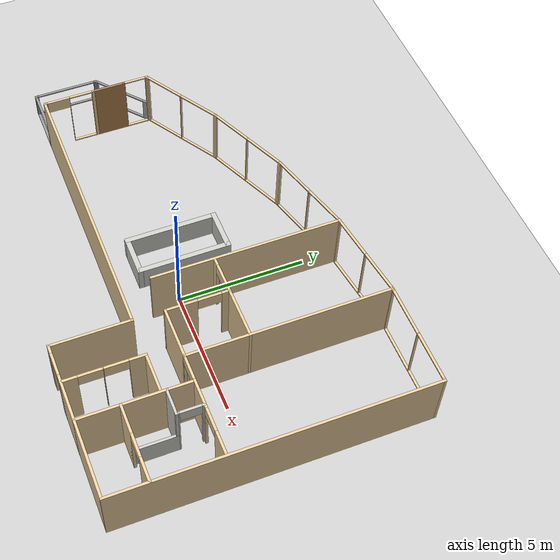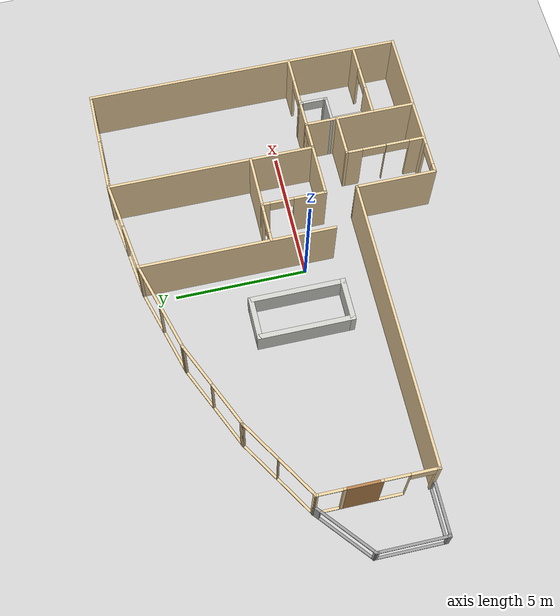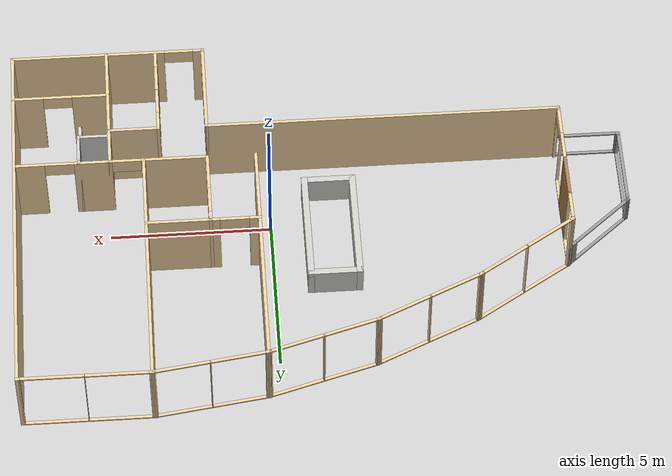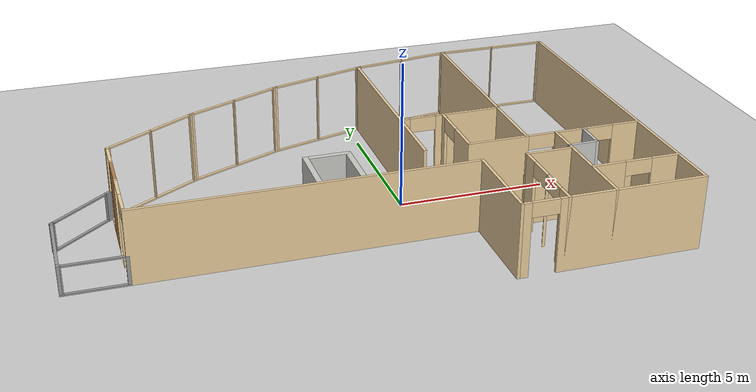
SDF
<sdf version="1.6">
 <world name="default">
  <model name="ground_plane">
   <static>1</static>
   <link name="link">
    <collision name="collision">
     <geometry><plane><normal>0 0 1</normal><size>100 100</size></plane></geometry>
     <surface>
      <contact><collide_bitmask>65535</collide_bitmask></contact>
      <friction><ode><mu>100</mu><mu2>50</mu2></ode></friction>
     </surface>
    </collision>
    <visual name="visual">
     <cast_shadows>0</cast_shadows>
     <geometry><plane><normal>0 0 1</normal><size>100 100</size></plane></geometry>
     <material>
      <script><uri>file://media/materials/scripts/gazebo.material</uri><name>Gazebo/Grey</name></script>
     </material>
    </visual>
   </link>
  </model>
  <model name="enso_mono">
   <pose>-1.65343 0.666389 0 0 -0 0</pose>
   <link name="Wall_0">
    <pose>7.50522 5.99675 0 0 -0 3.14159</pose>
    <visual name="Wall_0_Visual_0">
     <pose>-1.98 0 1.25 0 -0 0</pose>
     <geometry><box><size>0.14 0.1 2.5</size></box></geometry>
     <material>
      <script><uri>file://media/materials/scripts/gazebo.material</uri><name>Gazebo/Grey</name></script>
      <ambient>0.921569 0.807843 0.615686 1</ambient>
     </material>
     <meta><layer>0</layer></meta>
    </visual>
    <collision name="Wall_0_Collision_0">
     <geometry><box><size>0.14 0.1 2.5</size></box></geometry>
     <pose>-1.98 0 1.25 0 -0 0</pose>
    </collision>
    <visual name="Wall_0_Visual_1">
     <pose>0.07 0 0.025 0 -0 0</pose>
     <geometry><box><size>3.96 0.1 0.05</size></box></geometry>
     <material>
      <script><uri>file://media/materials/scripts/gazebo.material</uri><name>Gazebo/Grey</name></script>
      <ambient>0.921569 0.807843 0.615686 1</ambient>
     </material>
     <meta><layer>0</layer></meta>
    </visual>
    <collision name="Wall_0_Collision_1">
     <geometry><box><size>3.96 0.1 0.05</size></box></geometry>
     <pose>0.07 0 0.025 0 -0 0</pose>
    </collision>
    <visual name="Wall_0_Visual_2">
     <pose>0 0 1.275 0 -0 0</pose>
     <geometry><box><size>0.02 0.1 2.45</size></box></geometry>
     <material>
      <script><uri>file://media/materials/scripts/gazebo.material</uri><name>Gazebo/Grey</name></script>
      <ambient>0.921569 0.807843 0.615686 1</ambient>
     </material>
     <meta><layer>0</layer></meta>
    </visual>
    <collision name="Wall_0_Collision_2">
     <geometry><box><size>0.02 0.1 2.45</size></box></geometry>
     <pose>0 0 1.275 0 -0 0</pose>
    </collision>
    <visual name="Wall_0_Visual_3">
     <pose>1.98 0 1.275 0 -0 0</pose>
     <geometry><box><size>0.14 0.1 2.45</size></box></geometry>
     <material>
      <script><uri>file://media/materials/scripts/gazebo.material</uri><name>Gazebo/Grey</name></script>
      <ambient>0.921569 0.807843 0.615686 1</ambient>
     </material>
     <meta><layer>0</layer></meta>
    </visual>
    <collision name="Wall_0_Collision_3">
     <geometry><box><size>0.14 0.1 2.45</size></box></geometry>
     <pose>1.98 0 1.275 0 -0 0</pose>
    </collision>
    <visual name="Wall_0_Visual_4">
     <pose>-0.96 0 2.475 0 -0 0</pose>
     <geometry><box><size>1.9 0.1 0.05</size></box></geometry>
     <material>
      <script><uri>file://media/materials/scripts/gazebo.material</uri><name>Gazebo/Grey</name></script>
      <ambient>0.921569 0.807843 0.615686 1</ambient>
     </material>
     <meta><layer>0</layer></meta>
    </visual>
    <collision name="Wall_0_Collision_4">
     <geometry><box><size>1.9 0.1 0.05</size></box></geometry>
     <pose>-0.96 0 2.475 0 -0 0</pose>
    </collision>
    <visual name="Wall_0_Visual_5">
     <pose>0.96 0 2.475 0 -0 0</pose>
     <geometry><box><size>1.9 0.1 0.05</size></box></geometry>
     <material>
      <script><uri>file://media/materials/scripts/gazebo.material</uri><name>Gazebo/Grey</name></script>
      <ambient>0.921569 0.807843 0.615686 1</ambient>
     </material>
     <meta><layer>0</layer></meta>
    </visual>
    <collision name="Wall_0_Collision_5">
     <geometry><box><size>1.9 0.1 0.05</size></box></geometry>
     <pose>0.96 0 2.475 0 -0 0</pose>
    </collision>
   </link>
   <link name="Wall_1">
    <pose>3.77022 5.75175 0 0 0 -3.00131</pose>
    <visual name="Wall_1_Visual_0">
     <pose>-1.73504 0 1.25 0 -0 0</pose>
     <geometry><box><size>0.134336 0.1 2.5</size></box></geometry>
     <material>
      <script><uri>file://media/materials/scripts/gazebo.material</uri><name>Gazebo/Grey</name></script>
      <ambient>0.921569 0.807843 0.615686 1</ambient>
     </material>
     <meta><layer>0</layer></meta>
    </visual>
    <collision name="Wall_1_Collision_0">
     <geometry><box><size>0.134336 0.1 2.5</size></box></geometry>
     <pose>-1.73504 0 1.25 0 -0 0</pose>
    </collision>
    <visual name="Wall_1_Visual_1">
     <pose>0.067168 0 0.025 0 -0 0</pose>
     <geometry><box><size>3.47009 0.1 0.05</size></box></geometry>
     <material>
      <script><uri>file://media/materials/scripts/gazebo.material</uri><name>Gazebo/Grey</name></script>
      <ambient>0.921569 0.807843 0.615686 1</ambient>
     </material>
     <meta><layer>0</layer></meta>
    </visual>
    <collision name="Wall_1_Collision_1">
     <geometry><box><size>3.47009 0.1 0.05</size></box></geometry>
     <pose>0.067168 0 0.025 0 -0 0</pose>
    </collision>
    <visual name="Wall_1_Visual_2">
     <pose>-0.004951 0 1.275 0 -0 0</pose>
     <geometry><box><size>0.025852 0.1 2.45</size></box></geometry>
     <material>
      <script><uri>file://media/materials/scripts/gazebo.material</uri><name>Gazebo/Grey</name></script>
      <ambient>0.921569 0.807843 0.615686 1</ambient>
     </material>
     <meta><layer>0</layer></meta>
    </visual>
    <collision name="Wall_1_Collision_2">
     <geometry><box><size>0.025852 0.1 2.45</size></box></geometry>
     <pose>-0.004951 0 1.275 0 -0 0</pose>
    </collision>
    <visual name="Wall_1_Visual_3">
     <pose>1.73009 0 1.275 0 -0 0</pose>
     <geometry><box><size>0.144238 0.1 2.45</size></box></geometry>
     <material>
      <script><uri>file://media/materials/scripts/gazebo.material</uri><name>Gazebo/Grey</name></script>
      <ambient>0.921569 0.807843 0.615686 1</ambient>
     </material>
     <meta><layer>0</layer></meta>
    </visual>
    <collision name="Wall_1_Collision_3">
     <geometry><box><size>0.144238 0.1 2.45</size></box></geometry>
     <pose>1.73009 0 1.275 0 -0 0</pose>
    </collision>
    <visual name="Wall_1_Visual_4">
     <pose>-0.842877 0 2.475 0 -0 0</pose>
     <geometry><box><size>1.65 0.1 0.05</size></box></geometry>
     <material>
      <script><uri>file://media/materials/scripts/gazebo.material</uri><name>Gazebo/Grey</name></script>
      <ambient>0.921569 0.807843 0.615686 1</ambient>
     </material>
     <meta><layer>0</layer></meta>
    </visual>
    <collision name="Wall_1_Collision_4">
     <geometry><box><size>1.65 0.1 0.05</size></box></geometry>
     <pose>-0.842877 0 2.475 0 -0 0</pose>
    </collision>
    <visual name="Wall_1_Visual_5">
     <pose>0.832975 0 2.475 0 -0 0</pose>
     <geometry><box><size>1.65 0.1 0.05</size></box></geometry>
     <material>
      <script><uri>file://media/materials/scripts/gazebo.material</uri><name>Gazebo/Grey</name></script>
      <ambient>0.921569 0.807843 0.615686 1</ambient>
     </material>
     <meta><layer>0</layer></meta>
    </visual>
    <collision name="Wall_1_Collision_5">
     <geometry><box><size>1.65 0.1 0.05</size></box></geometry>
     <pose>0.832975 0 2.475 0 -0 0</pose>
    </collision>
   </link>
   <link name="Wall_10">
    <pose>6.50522 -6.00325 0 0 -0 0</pose>
    <visual name="Wall_10_Visual_0">
     <pose>-2.87 0 1.25 0 -0 0</pose>
     <geometry><box><size>0.36 0.1 2.5</size></box></geometry>
     <material>
      <script><uri>file://media/materials/scripts/gazebo.material</uri><name>Gazebo/Grey</name></script>
      <ambient>0.921569 0.807843 0.615686 1</ambient>
     </material>
     <meta><layer>0</layer></meta>
    </visual>
    <collision name="Wall_10_Collision_0">
     <geometry><box><size>0.36 0.1 2.5</size></box></geometry>
     <pose>-2.87 0 1.25 0 -0 0</pose>
    </collision>
    <visual name="Wall_10_Visual_1">
     <pose>0.63 0 1.25 0 -0 0</pose>
     <geometry><box><size>4.84 0.1 2.5</size></box></geometry>
     <material>
      <script><uri>file://media/materials/scripts/gazebo.material</uri><name>Gazebo/Grey</name></script>
      <ambient>0.921569 0.807843 0.615686 1</ambient>
     </material>
     <meta><layer>0</layer></meta>
    </visual>
    <collision name="Wall_10_Collision_1">
     <geometry><box><size>4.84 0.1 2.5</size></box></geometry>
     <pose>0.63 0 1.25 0 -0 0</pose>
    </collision>
    <visual name="Wall_10_Visual_2">
     <pose>-2.24 0 2.25 0 -0 0</pose>
     <geometry><box><size>0.9 0.1 0.5</size></box></geometry>
     <material>
      <script><uri>file://media/materials/scripts/gazebo.material</uri><name>Gazebo/Grey</name></script>
      <ambient>0.921569 0.807843 0.615686 1</ambient>
     </material>
     <meta><layer>0</layer></meta>
    </visual>
    <collision name="Wall_10_Collision_2">
     <geometry><box><size>0.9 0.1 0.5</size></box></geometry>
     <pose>-2.24 0 2.25 0 -0 0</pose>
    </collision>
   </link>
   <link name="Wall_11">
    <collision name="Wall_11_Collision">
     <geometry><box><size>12.1 0.1 2.5</size></box></geometry>
     <pose>0 0 1.25 0 -0 0</pose>
    </collision>
    <visual name="Wall_11_Visual">
     <pose>0 0 1.25 0 -0 0</pose>
     <geometry><box><size>12.1 0.1 2.5</size></box></geometry>
     <material>
      <script><uri>file://media/materials/scripts/gazebo.material</uri><name>Gazebo/Grey</name></script>
      <ambient>0.921569 0.807843 0.615686 1</ambient>
     </material>
     <meta><layer>0</layer></meta>
    </visual>
    <pose>9.50522 -0.00325 0 0 -0 1.5708</pose>
   </link>
   <link name="Wall_13">
    <pose>-7.49478 0.76675 0 0 0 -1.5708</pose>
    <visual name="Wall_13_Visual_0">
     <pose>-0.485 0 1.25 0 -0 0</pose>
     <geometry><box><size>0.13 0.1 2.5</size></box></geometry>
     <material>
      <script><uri>file://media/materials/scripts/gazebo.material</uri><name>Gazebo/Grey</name></script>
      <ambient>0.921569 0.807843 0.615686 1</ambient>
     </material>
     <meta><layer>0</layer></meta>
    </visual>
    <collision name="Wall_13_Collision_0">
     <geometry><box><size>0.13 0.1 2.5</size></box></geometry>
     <pose>-0.485 0 1.25 0 -0 0</pose>
    </collision>
    <visual name="Wall_13_Visual_1">
     <pose>0.065 0 0.025 0 -0 0</pose>
     <geometry><box><size>0.97 0.1 0.05</size></box></geometry>
     <material>
      <script><uri>file://media/materials/scripts/gazebo.material</uri><name>Gazebo/Grey</name></script>
      <ambient>0.921569 0.807843 0.615686 1</ambient>
     </material>
     <meta><layer>0</layer></meta>
    </visual>
    <collision name="Wall_13_Collision_1">
     <geometry><box><size>0.97 0.1 0.05</size></box></geometry>
     <pose>0.065 0 0.025 0 -0 0</pose>
    </collision>
    <visual name="Wall_13_Visual_2">
     <pose>0.495 0 1.275 0 -0 0</pose>
     <geometry><box><size>0.11 0.1 2.45</size></box></geometry>
     <material>
      <script><uri>file://media/materials/scripts/gazebo.material</uri><name>Gazebo/Grey</name></script>
      <ambient>0.921569 0.807843 0.615686 1</ambient>
     </material>
     <meta><layer>0</layer></meta>
    </visual>
    <collision name="Wall_13_Collision_2">
     <geometry><box><size>0.11 0.1 2.45</size></box></geometry>
     <pose>0.495 0 1.275 0 -0 0</pose>
    </collision>
    <visual name="Wall_13_Visual_3">
     <pose>0.01 0 2.475 0 -0 0</pose>
     <geometry><box><size>0.86 0.1 0.05</size></box></geometry>
     <material>
      <script><uri>file://media/materials/scripts/gazebo.material</uri><name>Gazebo/Grey</name></script>
      <ambient>0.921569 0.807843 0.615686 1</ambient>
     </material>
     <meta><layer>0</layer></meta>
    </visual>
    <collision name="Wall_13_Collision_3">
     <geometry><box><size>0.86 0.1 0.05</size></box></geometry>
     <pose>0.01 0 2.475 0 -0 0</pose>
    </collision>
   </link>
   <link name="Wall_15">
    <collision name="Wall_15_Collision">
     <geometry><box><size>1.37 0.1 2.5</size></box></geometry>
     <pose>0 0 1.25 0 -0 0</pose>
    </collision>
    <visual name="Wall_15_Visual">
     <pose>0 0 1.25 0 -0 0</pose>
     <geometry><box><size>1.37 0.1 2.5</size></box></geometry>
     <material>
      <script><uri>file://media/materials/scripts/gazebo.material</uri><name>Gazebo/Wood</name></script>
      <ambient>1 1 1 1</ambient>
     </material>
     <meta><layer>0</layer></meta>
    </visual>
    <pose>-7.49478 -0.368249 0 0 0 -1.5708</pose>
   </link>
   <link name="Wall_17">
    <pose>-7.49478 -2.00325 0 0 0 -1.5708</pose>
    <visual name="Wall_17_Visual_0">
     <pose>-0.99 0 1.25 0 -0 0</pose>
     <geometry><box><size>0.12 0.1 2.5</size></box></geometry>
     <material>
      <script><uri>file://media/materials/scripts/gazebo.material</uri><name>Gazebo/Grey</name></script>
      <ambient>0.921569 0.807843 0.615686 1</ambient>
     </material>
     <meta><layer>0</layer></meta>
    </visual>
    <collision name="Wall_17_Collision_0">
     <geometry><box><size>0.12 0.1 2.5</size></box></geometry>
     <pose>-0.99 0 1.25 0 -0 0</pose>
    </collision>
    <visual name="Wall_17_Visual_1">
     <pose>0.975 0 1.25 0 -0 0</pose>
     <geometry><box><size>0.149999 0.1 2.5</size></box></geometry>
     <material>
      <script><uri>file://media/materials/scripts/gazebo.material</uri><name>Gazebo/Grey</name></script>
      <ambient>0.921569 0.807843 0.615686 1</ambient>
     </material>
     <meta><layer>0</layer></meta>
    </visual>
    <collision name="Wall_17_Collision_1">
     <geometry><box><size>0.149999 0.1 2.5</size></box></geometry>
     <pose>0.975 0 1.25 0 -0 0</pose>
    </collision>
    <visual name="Wall_17_Visual_2">
     <pose>-0.465 0 0.025 0 -0 0</pose>
     <geometry><box><size>0.930001 0.1 0.05</size></box></geometry>
     <material>
      <script><uri>file://media/materials/scripts/gazebo.material</uri><name>Gazebo/Grey</name></script>
      <ambient>0.921569 0.807843 0.615686 1</ambient>
     </material>
     <meta><layer>0</layer></meta>
    </visual>
    <collision name="Wall_17_Collision_2">
     <geometry><box><size>0.930001 0.1 0.05</size></box></geometry>
     <pose>-0.465 0 0.025 0 -0 0</pose>
    </collision>
    <visual name="Wall_17_Visual_3">
     <pose>-0.005 0 1.275 0 -0 0</pose>
     <geometry><box><size>0.010001 0.1 2.45</size></box></geometry>
     <material>
      <script><uri>file://media/materials/scripts/gazebo.material</uri><name>Gazebo/Grey</name></script>
      <ambient>0.921569 0.807843 0.615686 1</ambient>
     </material>
     <meta><layer>0</layer></meta>
    </visual>
    <collision name="Wall_17_Collision_3">
     <geometry><box><size>0.010001 0.1 2.45</size></box></geometry>
     <pose>-0.005 0 1.275 0 -0 0</pose>
    </collision>
    <visual name="Wall_17_Visual_4">
     <pose>0.450001 0 2.25 0 -0 0</pose>
     <geometry><box><size>0.9 0.1 0.5</size></box></geometry>
     <material>
      <script><uri>file://media/materials/scripts/gazebo.material</uri><name>Gazebo/Grey</name></script>
      <ambient>0.921569 0.807843 0.615686 1</ambient>
     </material>
     <meta><layer>0</layer></meta>
    </visual>
    <collision name="Wall_17_Collision_4">
     <geometry><box><size>0.9 0.1 0.5</size></box></geometry>
     <pose>0.450001 0 2.25 0 -0 0</pose>
    </collision>
    <visual name="Wall_17_Visual_5">
     <pose>-0.47 0 2.475 0 -0 0</pose>
     <geometry><box><size>0.92 0.1 0.05</size></box></geometry>
     <material>
      <script><uri>file://media/materials/scripts/gazebo.material</uri><name>Gazebo/Grey</name></script>
      <ambient>0.921569 0.807843 0.615686 1</ambient>
     </material>
     <meta><layer>0</layer></meta>
    </visual>
    <collision name="Wall_17_Collision_5">
     <geometry><box><size>0.92 0.1 0.05</size></box></geometry>
     <pose>-0.47 0 2.475 0 -0 0</pose>
    </collision>
   </link>
   <link name="Wall_19">
    <collision name="Wall_19_Collision">
     <geometry><box><size>7.41 0.1 2.5</size></box></geometry>
     <pose>0 0 1.25 0 -0 0</pose>
    </collision>
    <visual name="Wall_19_Visual">
     <pose>0 0 1.25 0 -0 0</pose>
     <geometry><box><size>7.41 0.1 2.5</size></box></geometry>
     <material>
      <script><uri>file://media/materials/scripts/gazebo.material</uri><name>Gazebo/Grey</name></script>
      <ambient>0.921569 0.807843 0.615686 1</ambient>
     </material>
     <meta><layer>0</layer></meta>
    </visual>
    <pose>2.03522 1.85175 0 0 0 -1.5708</pose>
   </link>
   <link name="Wall_2">
    <pose>0.35522 5.02675 0 0 0 -2.86329</pose>
    <visual name="Wall_2_Visual_0">
     <pose>-1.72962 0 1.25 0 -0 0</pose>
     <geometry><box><size>0.135206 0.1 2.5</size></box></geometry>
     <material>
      <script><uri>file://media/materials/scripts/gazebo.material</uri><name>Gazebo/Grey</name></script>
      <ambient>0.921569 0.807843 0.615686 1</ambient>
     </material>
     <meta><layer>0</layer></meta>
    </visual>
    <collision name="Wall_2_Collision_0">
     <geometry><box><size>0.135206 0.1 2.5</size></box></geometry>
     <pose>-1.72962 0 1.25 0 -0 0</pose>
    </collision>
    <visual name="Wall_2_Visual_1">
     <pose>0.067603 0 0.025 0 -0 0</pose>
     <geometry><box><size>3.45925 0.1 0.05</size></box></geometry>
     <material>
      <script><uri>file://media/materials/scripts/gazebo.material</uri><name>Gazebo/Grey</name></script>
      <ambient>0.921569 0.807843 0.615686 1</ambient>
     </material>
     <meta><layer>0</layer></meta>
    </visual>
    <collision name="Wall_2_Collision_1">
     <geometry><box><size>3.45925 0.1 0.05</size></box></geometry>
     <pose>0.067603 0 0.025 0 -0 0</pose>
    </collision>
    <visual name="Wall_2_Visual_2">
     <pose>-0.0025 0 1.275 0 -0 0</pose>
     <geometry><box><size>0.039041 0.1 2.45</size></box></geometry>
     <material>
      <script><uri>file://media/materials/scripts/gazebo.material</uri><name>Gazebo/Grey</name></script>
      <ambient>0.921569 0.807843 0.615686 1</ambient>
     </material>
     <meta><layer>0</layer></meta>
    </visual>
    <collision name="Wall_2_Collision_2">
     <geometry><box><size>0.039041 0.1 2.45</size></box></geometry>
     <pose>-0.0025 0 1.275 0 -0 0</pose>
    </collision>
    <visual name="Wall_2_Visual_3">
     <pose>1.73212 0 1.275 0 -0 0</pose>
     <geometry><box><size>0.130206 0.1 2.45</size></box></geometry>
     <material>
      <script><uri>file://media/materials/scripts/gazebo.material</uri><name>Gazebo/Grey</name></script>
      <ambient>0.921569 0.807843 0.615686 1</ambient>
     </material>
     <meta><layer>0</layer></meta>
    </visual>
    <collision name="Wall_2_Collision_3">
     <geometry><box><size>0.130206 0.1 2.45</size></box></geometry>
     <pose>1.73212 0 1.275 0 -0 0</pose>
    </collision>
    <visual name="Wall_2_Visual_4">
     <pose>-0.84202 0 2.475 0 -0 0</pose>
     <geometry><box><size>1.64 0.1 0.05</size></box></geometry>
     <material>
      <script><uri>file://media/materials/scripts/gazebo.material</uri><name>Gazebo/Grey</name></script>
      <ambient>0.921569 0.807843 0.615686 1</ambient>
     </material>
     <meta><layer>0</layer></meta>
    </visual>
    <collision name="Wall_2_Collision_4">
     <geometry><box><size>1.64 0.1 0.05</size></box></geometry>
     <pose>-0.84202 0 2.475 0 -0 0</pose>
    </collision>
    <visual name="Wall_2_Visual_5">
     <pose>0.84202 0 2.475 0 -0 0</pose>
     <geometry><box><size>1.65 0.1 0.05</size></box></geometry>
     <material>
      <script><uri>file://media/materials/scripts/gazebo.material</uri><name>Gazebo/Grey</name></script>
      <ambient>0.921569 0.807843 0.615686 1</ambient>
     </material>
     <meta><layer>0</layer></meta>
    </visual>
    <collision name="Wall_2_Collision_5">
     <geometry><box><size>1.65 0.1 0.05</size></box></geometry>
     <pose>0.84202 0 2.475 0 -0 0</pose>
    </collision>
   </link>
   <link name="Wall_21">
    <collision name="Wall_21_Collision">
     <geometry><box><size>7.9 0.1 2.5</size></box></geometry>
     <pose>0 0 1.25 0 -0 0</pose>
    </collision>
    <visual name="Wall_21_Visual">
     <pose>0 0 1.25 0 -0 0</pose>
     <geometry><box><size>7.9 0.1 2.5</size></box></geometry>
     <material>
      <script><uri>file://media/materials/scripts/gazebo.material</uri><name>Gazebo/Grey</name></script>
      <ambient>0.921569 0.807843 0.615686 1</ambient>
     </material>
     <meta><layer>0</layer></meta>
    </visual>
    <pose>5.50522 2.09675 0 0 0 -1.5708</pose>
   </link>
   <link name="Wall_23">
    <pose>3.53522 -0.60325 0 0 0 -1.5708</pose>
    <visual name="Wall_23_Visual_0">
     <pose>-1.075 0 1.25 0 -0 0</pose>
     <geometry><box><size>0.35 0.1 2.5</size></box></geometry>
     <material>
      <script><uri>file://media/materials/scripts/gazebo.material</uri><name>Gazebo/Grey</name></script>
      <ambient>0.921569 0.807843 0.615686 1</ambient>
     </material>
     <meta><layer>0</layer></meta>
    </visual>
    <collision name="Wall_23_Collision_0">
     <geometry><box><size>0.35 0.1 2.5</size></box></geometry>
     <pose>-1.075 0 1.25 0 -0 0</pose>
    </collision>
    <visual name="Wall_23_Visual_1">
     <pose>0.625 0 1.25 0 -0 0</pose>
     <geometry><box><size>1.25 0.1 2.5</size></box></geometry>
     <material>
      <script><uri>file://media/materials/scripts/gazebo.material</uri><name>Gazebo/Grey</name></script>
      <ambient>0.921569 0.807843 0.615686 1</ambient>
     </material>
     <meta><layer>0</layer></meta>
    </visual>
    <collision name="Wall_23_Collision_1">
     <geometry><box><size>1.25 0.1 2.5</size></box></geometry>
     <pose>0.625 0 1.25 0 -0 0</pose>
    </collision>
    <visual name="Wall_23_Visual_2">
     <pose>-0.45 0 2.25 0 -0 0</pose>
     <geometry><box><size>0.9 0.1 0.5</size></box></geometry>
     <material>
      <script><uri>file://media/materials/scripts/gazebo.material</uri><name>Gazebo/Grey</name></script>
      <ambient>0.921569 0.807843 0.615686 1</ambient>
     </material>
     <meta><layer>0</layer></meta>
    </visual>
    <collision name="Wall_23_Collision_2">
     <geometry><box><size>0.9 0.1 0.5</size></box></geometry>
     <pose>-0.45 0 2.25 0 -0 0</pose>
    </collision>
   </link>
   <link name="Wall_25">
    <pose>5.00522 -4.50325 0 0 0 -1.5708</pose>
    <visual name="Wall_25_Visual_0">
     <pose>-1.22 0 1.25 0 -0 0</pose>
     <geometry><box><size>0.66 0.1 2.5</size></box></geometry>
     <material>
      <script><uri>file://media/materials/scripts/gazebo.material</uri><name>Gazebo/Grey</name></script>
      <ambient>0.921569 0.807843 0.615686 1</ambient>
     </material>
     <meta><layer>0</layer></meta>
    </visual>
    <collision name="Wall_25_Collision_0">
     <geometry><box><size>0.66 0.1 2.5</size></box></geometry>
     <pose>-1.22 0 1.25 0 -0 0</pose>
    </collision>
    <visual name="Wall_25_Visual_1">
     <pose>0.02 0 1.25 0 -0 0</pose>
     <geometry><box><size>0.02 0.1 2.5</size></box></geometry>
     <material>
      <script><uri>file://media/materials/scripts/gazebo.material</uri><name>Gazebo/Grey</name></script>
      <ambient>0.921569 0.807843 0.615686 1</ambient>
     </material>
     <meta><layer>0</layer></meta>
    </visual>
    <collision name="Wall_25_Collision_1">
     <geometry><box><size>0.02 0.1 2.5</size></box></geometry>
     <pose>0.02 0 1.25 0 -0 0</pose>
    </collision>
    <visual name="Wall_25_Visual_2">
     <pose>1.24 0 1.25 0 -0 0</pose>
     <geometry><box><size>0.62 0.1 2.5</size></box></geometry>
     <material>
      <script><uri>file://media/materials/scripts/gazebo.material</uri><name>Gazebo/Grey</name></script>
      <ambient>0.921569 0.807843 0.615686 1</ambient>
     </material>
     <meta><layer>0</layer></meta>
    </visual>
    <collision name="Wall_25_Collision_2">
     <geometry><box><size>0.62 0.1 2.5</size></box></geometry>
     <pose>1.24 0 1.25 0 -0 0</pose>
    </collision>
    <visual name="Wall_25_Visual_3">
     <pose>-0.44 0 2.25 0 -0 0</pose>
     <geometry><box><size>0.9 0.1 0.5</size></box></geometry>
     <material>
      <script><uri>file://media/materials/scripts/gazebo.material</uri><name>Gazebo/Grey</name></script>
      <ambient>0.921569 0.807843 0.615686 1</ambient>
     </material>
     <meta><layer>0</layer></meta>
    </visual>
    <collision name="Wall_25_Collision_3">
     <geometry><box><size>0.9 0.1 0.5</size></box></geometry>
     <pose>-0.44 0 2.25 0 -0 0</pose>
    </collision>
    <visual name="Wall_25_Visual_4">
     <pose>0.48 0 2.25 0 -0 0</pose>
     <geometry><box><size>0.9 0.1 0.5</size></box></geometry>
     <material>
      <script><uri>file://media/materials/scripts/gazebo.material</uri><name>Gazebo/Grey</name></script>
      <ambient>0.921569 0.807843 0.615686 1</ambient>
     </material>
     <meta><layer>0</layer></meta>
    </visual>
    <collision name="Wall_25_Collision_4">
     <geometry><box><size>0.9 0.1 0.5</size></box></geometry>
     <pose>0.48 0 2.25 0 -0 0</pose>
    </collision>
   </link>
   <link name="Wall_29">
    <collision name="Wall_29_Collision">
     <geometry><box><size>4.3 0.1 2.5</size></box></geometry>
     <pose>0 0 1.25 0 -0 0</pose>
    </collision>
    <visual name="Wall_29_Visual">
     <pose>0 0 1.25 0 -0 0</pose>
     <geometry><box><size>4.3 0.1 2.5</size></box></geometry>
     <material>
      <script><uri>file://media/materials/scripts/gazebo.material</uri><name>Gazebo/Grey</name></script>
      <ambient>0.921569 0.807843 0.615686 1</ambient>
     </material>
     <meta><layer>0</layer></meta>
    </visual>
    <pose>6.54522 -3.90325 0 0 0 -1.5708</pose>
   </link>
   <link name="Wall_3">
    <pose>-2.92478 3.83175 0 0 0 -2.72134</pose>
    <visual name="Wall_3_Visual_0">
     <pose>-1.73562 0 1.25 0 -0 0</pose>
     <geometry><box><size>0.133735 0.1 2.5</size></box></geometry>
     <material>
      <script><uri>file://media/materials/scripts/gazebo.material</uri><name>Gazebo/Grey</name></script>
      <ambient>0.921569 0.807843 0.615686 1</ambient>
     </material>
     <meta><layer>0</layer></meta>
    </visual>
    <collision name="Wall_3_Collision_0">
     <geometry><box><size>0.133735 0.1 2.5</size></box></geometry>
     <pose>-1.73562 0 1.25 0 -0 0</pose>
    </collision>
    <visual name="Wall_3_Visual_1">
     <pose>0.066867 0 0.025 0 -0 0</pose>
     <geometry><box><size>3.47125 0.1 0.05</size></box></geometry>
     <material>
      <script><uri>file://media/materials/scripts/gazebo.material</uri><name>Gazebo/Grey</name></script>
      <ambient>0.921569 0.807843 0.615686 1</ambient>
     </material>
     <meta><layer>0</layer></meta>
    </visual>
    <collision name="Wall_3_Collision_1">
     <geometry><box><size>3.47125 0.1 0.05</size></box></geometry>
     <pose>0.066867 0 0.025 0 -0 0</pose>
    </collision>
    <visual name="Wall_3_Visual_2">
     <pose>0 0 1.275 0 -0 0</pose>
     <geometry><box><size>0.037512 0.1 2.45</size></box></geometry>
     <material>
      <script><uri>file://media/materials/scripts/gazebo.material</uri><name>Gazebo/Grey</name></script>
      <ambient>0.921569 0.807843 0.615686 1</ambient>
     </material>
     <meta><layer>0</layer></meta>
    </visual>
    <collision name="Wall_3_Collision_2">
     <geometry><box><size>0.037512 0.1 2.45</size></box></geometry>
     <pose>0 0 1.275 0 -0 0</pose>
    </collision>
    <visual name="Wall_3_Visual_3">
     <pose>1.73562 0 1.275 0 -0 0</pose>
     <geometry><box><size>0.133735 0.1 2.45</size></box></geometry>
     <material>
      <script><uri>file://media/materials/scripts/gazebo.material</uri><name>Gazebo/Grey</name></script>
      <ambient>0.921569 0.807843 0.615686 1</ambient>
     </material>
     <meta><layer>0</layer></meta>
    </visual>
    <collision name="Wall_3_Collision_3">
     <geometry><box><size>0.133735 0.1 2.45</size></box></geometry>
     <pose>1.73562 0 1.275 0 -0 0</pose>
    </collision>
    <visual name="Wall_3_Visual_4">
     <pose>-0.843756 0 2.475 0 -0 0</pose>
     <geometry><box><size>1.65 0.1 0.05</size></box></geometry>
     <material>
      <script><uri>file://media/materials/scripts/gazebo.material</uri><name>Gazebo/Grey</name></script>
      <ambient>0.921569 0.807843 0.615686 1</ambient>
     </material>
     <meta><layer>0</layer></meta>
    </visual>
    <collision name="Wall_3_Collision_4">
     <geometry><box><size>1.65 0.1 0.05</size></box></geometry>
     <pose>-0.843756 0 2.475 0 -0 0</pose>
    </collision>
    <visual name="Wall_3_Visual_5">
     <pose>0.843756 0 2.475 0 -0 0</pose>
     <geometry><box><size>1.65 0.1 0.05</size></box></geometry>
     <material>
      <script><uri>file://media/materials/scripts/gazebo.material</uri><name>Gazebo/Grey</name></script>
      <ambient>0.921569 0.807843 0.615686 1</ambient>
     </material>
     <meta><layer>0</layer></meta>
    </visual>
    <collision name="Wall_3_Collision_5">
     <geometry><box><size>1.65 0.1 0.05</size></box></geometry>
     <pose>0.843756 0 2.475 0 -0 0</pose>
    </collision>
   </link>
   <link name="Wall_31">
    <pose>6.52022 -1.80325 0 0 -0 0</pose>
    <visual name="Wall_31_Visual_0">
     <pose>-1.99 0 1.25 0 -0 0</pose>
     <geometry><box><size>2.09 0.1 2.5</size></box></geometry>
     <material>
      <script><uri>file://media/materials/scripts/gazebo.material</uri><name>Gazebo/Grey</name></script>
      <ambient>0.921569 0.807843 0.615686 1</ambient>
     </material>
     <meta><layer>0</layer></meta>
    </visual>
    <collision name="Wall_31_Collision_0">
     <geometry><box><size>2.09 0.1 2.5</size></box></geometry>
     <pose>-1.99 0 1.25 0 -0 0</pose>
    </collision>
    <visual name="Wall_31_Visual_1">
     <pose>0.545 0 1.25 0 -0 0</pose>
     <geometry><box><size>1.18 0.1 2.5</size></box></geometry>
     <material>
      <script><uri>file://media/materials/scripts/gazebo.material</uri><name>Gazebo/Grey</name></script>
      <ambient>0.921569 0.807843 0.615686 1</ambient>
     </material>
     <meta><layer>0</layer></meta>
    </visual>
    <collision name="Wall_31_Collision_1">
     <geometry><box><size>1.18 0.1 2.5</size></box></geometry>
     <pose>0.545 0 1.25 0 -0 0</pose>
    </collision>
    <visual name="Wall_31_Visual_2">
     <pose>2.535 0 1.25 0 -0 0</pose>
     <geometry><box><size>1 0.1 2.5</size></box></geometry>
     <material>
      <script><uri>file://media/materials/scripts/gazebo.material</uri><name>Gazebo/Grey</name></script>
      <ambient>0.921569 0.807843 0.615686 1</ambient>
     </material>
     <meta><layer>0</layer></meta>
    </visual>
    <collision name="Wall_31_Collision_2">
     <geometry><box><size>1 0.1 2.5</size></box></geometry>
     <pose>2.535 0 1.25 0 -0 0</pose>
    </collision>
    <visual name="Wall_31_Visual_3">
     <pose>-0.495 0 2.25 0 -0 0</pose>
     <geometry><box><size>0.9 0.1 0.5</size></box></geometry>
     <material>
      <script><uri>file://media/materials/scripts/gazebo.material</uri><name>Gazebo/Grey</name></script>
      <ambient>0.921569 0.807843 0.615686 1</ambient>
     </material>
     <meta><layer>0</layer></meta>
    </visual>
    <collision name="Wall_31_Collision_3">
     <geometry><box><size>0.9 0.1 0.5</size></box></geometry>
     <pose>-0.495 0 2.25 0 -0 0</pose>
    </collision>
    <visual name="Wall_31_Visual_4">
     <pose>1.585 0 2.25 0 -0 0</pose>
     <geometry><box><size>0.9 0.1 0.5</size></box></geometry>
     <material>
      <script><uri>file://media/materials/scripts/gazebo.material</uri><name>Gazebo/Grey</name></script>
      <ambient>0.921569 0.807843 0.615686 1</ambient>
     </material>
     <meta><layer>0</layer></meta>
    </visual>
    <collision name="Wall_31_Collision_4">
     <geometry><box><size>0.9 0.1 0.5</size></box></geometry>
     <pose>1.585 0 2.25 0 -0 0</pose>
    </collision>
   </link>
   <link name="Wall_33">
    <collision name="Wall_33_Collision">
     <geometry><box><size>1.64 0.1 2.5</size></box></geometry>
     <pose>0 0 1.25 0 -0 0</pose>
    </collision>
    <visual name="Wall_33_Visual">
     <pose>0 0 1.25 0 -0 0</pose>
     <geometry><box><size>1.64 0.1 2.5</size></box></geometry>
     <material>
      <script><uri>file://media/materials/scripts/gazebo.material</uri><name>Gazebo/Grey</name></script>
      <ambient>0.921569 0.807843 0.615686 1</ambient>
     </material>
     <meta><layer>0</layer></meta>
    </visual>
    <pose>5.77522 -3.00325 0 0 -0 0</pose>
   </link>
   <link name="Wall_35">
    <collision name="Wall_35_Collision">
     <geometry><box><size>1.7 0.2 1</size></box></geometry>
     <pose>0 0 0.5 0 -0 0</pose>
    </collision>
    <visual name="Wall_35_Visual">
     <pose>0 0 0.5 0 -0 0</pose>
     <geometry><box><size>1.7 0.2 1</size></box></geometry>
     <material>
      <script><uri>file://media/materials/scripts/gazebo.material</uri><name>Gazebo/CeilingTiled</name></script>
      <ambient>1 1 1 1</ambient>
     </material>
     <meta><layer>0</layer></meta>
    </visual>
    <pose>-0.21478 -1.80325 0 0 -0 3.14159</pose>
   </link>
   <link name="Wall_37">
    <pose>8.02522 -4.40325 0 0 -0 0</pose>
    <visual name="Wall_37_Visual_0">
     <pose>-0.945 0 1.25 0 -0 0</pose>
     <geometry><box><size>1.17 0.1 2.5</size></box></geometry>
     <material>
      <script><uri>file://media/materials/scripts/gazebo.material</uri><name>Gazebo/Grey</name></script>
      <ambient>0.921569 0.807843 0.615686 1</ambient>
     </material>
     <meta><layer>0</layer></meta>
    </visual>
    <collision name="Wall_37_Collision_0">
     <geometry><box><size>1.17 0.1 2.5</size></box></geometry>
     <pose>-0.945 0 1.25 0 -0 0</pose>
    </collision>
    <visual name="Wall_37_Visual_1">
     <pose>1.035 0 1.25 0 -0 0</pose>
     <geometry><box><size>0.990001 0.1 2.5</size></box></geometry>
     <material>
      <script><uri>file://media/materials/scripts/gazebo.material</uri><name>Gazebo/Grey</name></script>
      <ambient>0.921569 0.807843 0.615686 1</ambient>
     </material>
     <meta><layer>0</layer></meta>
    </visual>
    <collision name="Wall_37_Collision_1">
     <geometry><box><size>0.990001 0.1 2.5</size></box></geometry>
     <pose>1.035 0 1.25 0 -0 0</pose>
    </collision>
    <visual name="Wall_37_Visual_2">
     <pose>0.089999 0 2.25 0 -0 0</pose>
     <geometry><box><size>0.9 0.1 0.5</size></box></geometry>
     <material>
      <script><uri>file://media/materials/scripts/gazebo.material</uri><name>Gazebo/Grey</name></script>
      <ambient>0.921569 0.807843 0.615686 1</ambient>
     </material>
     <meta><layer>0</layer></meta>
    </visual>
    <collision name="Wall_37_Collision_2">
     <geometry><box><size>0.9 0.1 0.5</size></box></geometry>
     <pose>0.089999 0 2.25 0 -0 0</pose>
    </collision>
   </link>
   <link name="Wall_39">
    <pose>3.77022 0.59675 0 0 -0 0</pose>
    <visual name="Wall_39_Visual_0">
     <pose>-1.6 0 1.25 0 -0 0</pose>
     <geometry><box><size>0.37 0.1 2.5</size></box></geometry>
     <material>
      <script><uri>file://media/materials/scripts/gazebo.material</uri><name>Gazebo/Grey</name></script>
      <ambient>0.921569 0.807843 0.615686 1</ambient>
     </material>
     <meta><layer>0</layer></meta>
    </visual>
    <collision name="Wall_39_Collision_0">
     <geometry><box><size>0.37 0.1 2.5</size></box></geometry>
     <pose>-1.6 0 1.25 0 -0 0</pose>
    </collision>
    <visual name="Wall_39_Visual_1">
     <pose>0.635 0 1.25 0 -0 0</pose>
     <geometry><box><size>2.3 0.1 2.5</size></box></geometry>
     <material>
      <script><uri>file://media/materials/scripts/gazebo.material</uri><name>Gazebo/Grey</name></script>
      <ambient>0.921569 0.807843 0.615686 1</ambient>
     </material>
     <meta><layer>0</layer></meta>
    </visual>
    <collision name="Wall_39_Collision_1">
     <geometry><box><size>2.3 0.1 2.5</size></box></geometry>
     <pose>0.635 0 1.25 0 -0 0</pose>
    </collision>
    <visual name="Wall_39_Visual_2">
     <pose>-0.965 0 2.25 0 -0 0</pose>
     <geometry><box><size>0.9 0.1 0.5</size></box></geometry>
     <material>
      <script><uri>file://media/materials/scripts/gazebo.material</uri><name>Gazebo/Grey</name></script>
      <ambient>0.921569 0.807843 0.615686 1</ambient>
     </material>
     <meta><layer>0</layer></meta>
    </visual>
    <collision name="Wall_39_Collision_2">
     <geometry><box><size>0.9 0.1 0.5</size></box></geometry>
     <pose>-0.965 0 2.25 0 -0 0</pose>
    </collision>
   </link>
   <link name="Wall_4">
    <pose>-6.00978 2.19175 0 0 0 -2.58451</pose>
    <visual name="Wall_4_Visual_0">
     <pose>-1.73335 0 1.25 0 -0 0</pose>
     <geometry><box><size>0.132359 0.1 2.5</size></box></geometry>
     <material>
      <script><uri>file://media/materials/scripts/gazebo.material</uri><name>Gazebo/Grey</name></script>
      <ambient>0.921569 0.807843 0.615686 1</ambient>
     </material>
     <meta><layer>0</layer></meta>
    </visual>
    <collision name="Wall_4_Collision_0">
     <geometry><box><size>0.132359 0.1 2.5</size></box></geometry>
     <pose>-1.73335 0 1.25 0 -0 0</pose>
    </collision>
    <visual name="Wall_4_Visual_1">
     <pose>0.066179 0 0.025 0 -0 0</pose>
     <geometry><box><size>3.4667 0.1 0.05</size></box></geometry>
     <material>
      <script><uri>file://media/materials/scripts/gazebo.material</uri><name>Gazebo/Grey</name></script>
      <ambient>0.921569 0.807843 0.615686 1</ambient>
     </material>
     <meta><layer>0</layer></meta>
    </visual>
    <collision name="Wall_4_Collision_1">
     <geometry><box><size>3.4667 0.1 0.05</size></box></geometry>
     <pose>0.066179 0 0.025 0 -0 0</pose>
    </collision>
    <visual name="Wall_4_Visual_2">
     <pose>-0.004244 0 1.275 0 -0 0</pose>
     <geometry><box><size>0.025851 0.1 2.45</size></box></geometry>
     <material>
      <script><uri>file://media/materials/scripts/gazebo.material</uri><name>Gazebo/Grey</name></script>
      <ambient>0.921569 0.807843 0.615686 1</ambient>
     </material>
     <meta><layer>0</layer></meta>
    </visual>
    <collision name="Wall_4_Collision_2">
     <geometry><box><size>0.025851 0.1 2.45</size></box></geometry>
     <pose>-0.004244 0 1.275 0 -0 0</pose>
    </collision>
    <visual name="Wall_4_Visual_3">
     <pose>1.7291 0 1.275 0 -0 0</pose>
     <geometry><box><size>0.140847 0.1 2.45</size></box></geometry>
     <material>
      <script><uri>file://media/materials/scripts/gazebo.material</uri><name>Gazebo/Grey</name></script>
      <ambient>0.921569 0.807843 0.615686 1</ambient>
     </material>
     <meta><layer>0</layer></meta>
    </visual>
    <collision name="Wall_4_Collision_3">
     <geometry><box><size>0.140847 0.1 2.45</size></box></geometry>
     <pose>1.7291 0 1.275 0 -0 0</pose>
    </collision>
    <visual name="Wall_4_Visual_4">
     <pose>-0.84217 0 2.475 0 -0 0</pose>
     <geometry><box><size>1.65 0.1 0.05</size></box></geometry>
     <material>
      <script><uri>file://media/materials/scripts/gazebo.material</uri><name>Gazebo/Grey</name></script>
      <ambient>0.921569 0.807843 0.615686 1</ambient>
     </material>
     <meta><layer>0</layer></meta>
    </visual>
    <collision name="Wall_4_Collision_4">
     <geometry><box><size>1.65 0.1 0.05</size></box></geometry>
     <pose>-0.84217 0 2.475 0 -0 0</pose>
    </collision>
    <visual name="Wall_4_Visual_5">
     <pose>0.833682 0 2.475 0 -0 0</pose>
     <geometry><box><size>1.65 0.1 0.05</size></box></geometry>
     <material>
      <script><uri>file://media/materials/scripts/gazebo.material</uri><name>Gazebo/Grey</name></script>
      <ambient>0.921569 0.807843 0.615686 1</ambient>
     </material>
     <meta><layer>0</layer></meta>
    </visual>
    <collision name="Wall_4_Collision_5">
     <geometry><box><size>1.65 0.1 0.05</size></box></geometry>
     <pose>0.833682 0 2.475 0 -0 0</pose>
    </collision>
   </link>
   <link name="Wall_41">
    <collision name="Wall_41_Collision">
     <geometry><box><size>1.673 0.2 1</size></box></geometry>
     <pose>0 0 0.5 0 -0 0</pose>
    </collision>
    <visual name="Wall_41_Visual">
     <pose>0 0 0.5 0 -0 0</pose>
     <geometry><box><size>1.673 0.2 1</size></box></geometry>
     <material>
      <script><uri>file://media/materials/scripts/gazebo.material</uri><name>Gazebo/CeilingTiled</name></script>
      <ambient>1 1 1 1</ambient>
     </material>
     <meta><layer>0</layer></meta>
    </visual>
    <pose>-0.22828 1.69675 0 0 -0 0</pose>
   </link>
   <link name="Wall_43">
    <collision name="Wall_43_Collision">
     <geometry><box><size>3.7 0.2 1</size></box></geometry>
     <pose>0 0 0.5 0 -0 0</pose>
    </collision>
    <visual name="Wall_43_Visual">
     <pose>0 0 0.5 0 -0 0</pose>
     <geometry><box><size>3.7 0.2 1</size></box></geometry>
     <material>
      <script><uri>file://media/materials/scripts/gazebo.material</uri><name>Gazebo/CeilingTiled</name></script>
      <ambient>1 1 1 1</ambient>
     </material>
     <meta><layer>0</layer></meta>
    </visual>
    <pose>-0.96478 -0.053249 0 0 -0 1.5708</pose>
   </link>
   <link name="Wall_45">
    <collision name="Wall_45_Collision">
     <geometry><box><size>3.7 0.2 1</size></box></geometry>
     <pose>0 0 0.5 0 -0 0</pose>
    </collision>
    <visual name="Wall_45_Visual">
     <pose>0 0 0.5 0 -0 0</pose>
     <geometry><box><size>3.7 0.2 1</size></box></geometry>
     <material>
      <script><uri>file://media/materials/scripts/gazebo.material</uri><name>Gazebo/CeilingTiled</name></script>
      <ambient>1 1 1 1</ambient>
     </material>
     <meta><layer>0</layer></meta>
    </visual>
    <pose>0.53522 -0.053249 0 0 0 -1.5708</pose>
   </link>
   <link name="Wall_47">
    <collision name="Wall_47_Collision">
     <geometry><box><size>1.06 0.1 2.5</size></box></geometry>
     <pose>0 0 1.25 0 -0 0</pose>
    </collision>
    <visual name="Wall_47_Visual">
     <pose>0 0 1.25 0 -0 0</pose>
     <geometry><box><size>1.06 0.1 2.5</size></box></geometry>
     <material>
      <script><uri>file://media/materials/scripts/gazebo.material</uri><name>Gazebo/CeilingTiled</name></script>
      <ambient>0.921569 0.807843 0.615686 1</ambient>
     </material>
     <meta><layer>0</layer></meta>
    </visual>
    <pose>7.02522 -2.80325 0 0 -0 0</pose>
   </link>
   <link name="Wall_49">
    <pose>7.50522 -2.30325 0 0 0 -1.5708</pose>
    <visual name="Wall_49_Visual_0">
     <pose>-0.475 0 1.25 0 -0 0</pose>
     <geometry><box><size>0.15 0.1 2.5</size></box></geometry>
     <material>
      <script><uri>file://media/materials/scripts/gazebo.material</uri><name>Gazebo/CeilingTiled</name></script>
      <ambient>1 1 1 1</ambient>
     </material>
     <meta><layer>0</layer></meta>
    </visual>
    <collision name="Wall_49_Collision_0">
     <geometry><box><size>0.15 0.1 2.5</size></box></geometry>
     <pose>-0.475 0 1.25 0 -0 0</pose>
    </collision>
    <visual name="Wall_49_Visual_1">
     <pose>0.475 0 1.25 0 -0 0</pose>
     <geometry><box><size>0.15 0.1 2.5</size></box></geometry>
     <material>
      <script><uri>file://media/materials/scripts/gazebo.material</uri><name>Gazebo/CeilingTiled</name></script>
      <ambient>1 1 1 1</ambient>
     </material>
     <meta><layer>0</layer></meta>
    </visual>
    <collision name="Wall_49_Collision_1">
     <geometry><box><size>0.15 0.1 2.5</size></box></geometry>
     <pose>0.475 0 1.25 0 -0 0</pose>
    </collision>
    <visual name="Wall_49_Visual_2">
     <pose>0 0 2.25 0 -0 0</pose>
     <geometry><box><size>0.8 0.1 0.5</size></box></geometry>
     <material>
      <script><uri>file://media/materials/scripts/gazebo.material</uri><name>Gazebo/CeilingTiled</name></script>
      <ambient>1 1 1 1</ambient>
     </material>
     <meta><layer>0</layer></meta>
    </visual>
    <collision name="Wall_49_Collision_2">
     <geometry><box><size>0.8 0.1 0.5</size></box></geometry>
     <pose>0 0 2.25 0 -0 0</pose>
    </collision>
   </link>
   <link name="Wall_5">
    <pose>-8.48978 0.43175 0 0 0 -2.4434</pose>
    <visual name="Wall_5_Visual_0">
     <pose>-1.18992 0 0.5 0 -0 0</pose>
     <geometry><box><size>0.318053 0.1 1</size></box></geometry>
     <material>
      <script><uri>file://media/materials/scripts/gazebo.material</uri><name>Gazebo/Grey</name></script>
      <ambient>1 1 1 1</ambient>
     </material>
     <meta><layer>0</layer></meta>
    </visual>
    <collision name="Wall_5_Collision_0">
     <geometry><box><size>0.318053 0.1 1</size></box></geometry>
     <pose>-1.18992 0 0.5 0 -0 0</pose>
    </collision>
    <visual name="Wall_5_Visual_1">
     <pose>0.159026 0 0.025 0 -0 0</pose>
     <geometry><box><size>2.37983 0.1 0.05</size></box></geometry>
     <material>
      <script><uri>file://media/materials/scripts/gazebo.material</uri><name>Gazebo/Grey</name></script>
      <ambient>1 1 1 1</ambient>
     </material>
     <meta><layer>0</layer></meta>
    </visual>
    <collision name="Wall_5_Collision_1">
     <geometry><box><size>2.37983 0.1 0.05</size></box></geometry>
     <pose>0.159026 0 0.025 0 -0 0</pose>
    </collision>
    <visual name="Wall_5_Visual_2">
     <pose>1.27903 0 0.525 0 -0 0</pose>
     <geometry><box><size>0.139831 0.1 0.95</size></box></geometry>
     <material>
      <script><uri>file://media/materials/scripts/gazebo.material</uri><name>Gazebo/Grey</name></script>
      <ambient>1 1 1 1</ambient>
     </material>
     <meta><layer>0</layer></meta>
    </visual>
    <collision name="Wall_5_Collision_2">
     <geometry><box><size>0.139831 0.1 0.95</size></box></geometry>
     <pose>1.27903 0 0.525 0 -0 0</pose>
    </collision>
    <visual name="Wall_5_Visual_3">
     <pose>0.089111 0 0.975 0 -0 0</pose>
     <geometry><box><size>2.24 0.1 0.05</size></box></geometry>
     <material>
      <script><uri>file://media/materials/scripts/gazebo.material</uri><name>Gazebo/Grey</name></script>
      <ambient>1 1 1 1</ambient>
     </material>
     <meta><layer>0</layer></meta>
    </visual>
    <collision name="Wall_5_Collision_3">
     <geometry><box><size>2.24 0.1 0.05</size></box></geometry>
     <pose>0.089111 0 0.975 0 -0 0</pose>
    </collision>
   </link>
   <link name="Wall_51">
    <collision name="Wall_51_Collision">
     <geometry><box><size>1.7 0.1 1</size></box></geometry>
     <pose>0 0 0.5 0 -0 0</pose>
    </collision>
    <visual name="Wall_51_Visual">
     <pose>0 0 0.5 0 -0 0</pose>
     <geometry><box><size>1.7 0.1 1</size></box></geometry>
     <material>
      <script><uri>file://media/materials/scripts/gazebo.material</uri><name>Gazebo/CeilingTiled</name></script>
      <ambient>1 1 1 1</ambient>
     </material>
     <meta><layer>0</layer></meta>
    </visual>
    <pose>7.50522 -3.60325 0 0 0 -1.5708</pose>
   </link>
   <link name="Wall_6">
    <pose>-9.48478 -1.70325 0 0 0 -1.5708</pose>
    <visual name="Wall_6_Visual_0">
     <pose>-1.275 0 0.5 0 -0 0</pose>
     <geometry><box><size>0.15 0.1 1</size></box></geometry>
     <material>
      <script><uri>file://media/materials/scripts/gazebo.material</uri><name>Gazebo/Grey</name></script>
      <ambient>1 1 1 1</ambient>
     </material>
     <meta><layer>0</layer></meta>
    </visual>
    <collision name="Wall_6_Collision_0">
     <geometry><box><size>0.15 0.1 1</size></box></geometry>
     <pose>-1.275 0 0.5 0 -0 0</pose>
    </collision>
    <visual name="Wall_6_Visual_1">
     <pose>0.075 0 0.025 0 -0 0</pose>
     <geometry><box><size>2.55 0.1 0.05</size></box></geometry>
     <material>
      <script><uri>file://media/materials/scripts/gazebo.material</uri><name>Gazebo/Grey</name></script>
      <ambient>1 1 1 1</ambient>
     </material>
     <meta><layer>0</layer></meta>
    </visual>
    <collision name="Wall_6_Collision_1">
     <geometry><box><size>2.55 0.1 0.05</size></box></geometry>
     <pose>0.075 0 0.025 0 -0 0</pose>
    </collision>
    <visual name="Wall_6_Visual_2">
     <pose>1.275 0 0.525 0 -0 0</pose>
     <geometry><box><size>0.15 0.1 0.95</size></box></geometry>
     <material>
      <script><uri>file://media/materials/scripts/gazebo.material</uri><name>Gazebo/Grey</name></script>
      <ambient>1 1 1 1</ambient>
     </material>
     <meta><layer>0</layer></meta>
    </visual>
    <collision name="Wall_6_Collision_2">
     <geometry><box><size>0.15 0.1 0.95</size></box></geometry>
     <pose>1.275 0 0.525 0 -0 0</pose>
    </collision>
    <visual name="Wall_6_Visual_3">
     <pose>-0 0 0.975 0 -0 0</pose>
     <geometry><box><size>2.4 0.1 0.05</size></box></geometry>
     <material>
      <script><uri>file://media/materials/scripts/gazebo.material</uri><name>Gazebo/Grey</name></script>
      <ambient>1 1 1 1</ambient>
     </material>
     <meta><layer>0</layer></meta>
    </visual>
    <collision name="Wall_6_Collision_3">
     <geometry><box><size>2.4 0.1 0.05</size></box></geometry>
     <pose>-0 0 0.975 0 -0 0</pose>
    </collision>
   </link>
   <link name="Wall_7">
    <pose>-8.48978 -3.00325 0 0 -0 0</pose>
    <visual name="Wall_7_Visual_0">
     <pose>-0.975 0 0.5 0 -0 0</pose>
     <geometry><box><size>0.14 0.1 1</size></box></geometry>
     <material>
      <script><uri>file://media/materials/scripts/gazebo.material</uri><name>Gazebo/Grey</name></script>
      <ambient>1 1 1 1</ambient>
     </material>
     <meta><layer>0</layer></meta>
    </visual>
    <collision name="Wall_7_Collision_0">
     <geometry><box><size>0.14 0.1 1</size></box></geometry>
     <pose>-0.975 0 0.5 0 -0 0</pose>
    </collision>
    <visual name="Wall_7_Visual_1">
     <pose>0.07 0 0.025 0 -0 0</pose>
     <geometry><box><size>1.95 0.1 0.05</size></box></geometry>
     <material>
      <script><uri>file://media/materials/scripts/gazebo.material</uri><name>Gazebo/Grey</name></script>
      <ambient>1 1 1 1</ambient>
     </material>
     <meta><layer>0</layer></meta>
    </visual>
    <collision name="Wall_7_Collision_1">
     <geometry><box><size>1.95 0.1 0.05</size></box></geometry>
     <pose>0.07 0 0.025 0 -0 0</pose>
    </collision>
    <visual name="Wall_7_Visual_2">
     <pose>0.99 0 0.525 0 -0 0</pose>
     <geometry><box><size>0.11 0.1 0.95</size></box></geometry>
     <material>
      <script><uri>file://media/materials/scripts/gazebo.material</uri><name>Gazebo/Grey</name></script>
      <ambient>1 1 1 1</ambient>
     </material>
     <meta><layer>0</layer></meta>
    </visual>
    <collision name="Wall_7_Collision_2">
     <geometry><box><size>0.11 0.1 0.95</size></box></geometry>
     <pose>0.99 0 0.525 0 -0 0</pose>
    </collision>
    <visual name="Wall_7_Visual_3">
     <pose>0.015 0 0.975 0 -0 0</pose>
     <geometry><box><size>1.84 0.1 0.05</size></box></geometry>
     <material>
      <script><uri>file://media/materials/scripts/gazebo.material</uri><name>Gazebo/Grey</name></script>
      <ambient>1 1 1 1</ambient>
     </material>
     <meta><layer>0</layer></meta>
    </visual>
    <collision name="Wall_7_Collision_3">
     <geometry><box><size>1.84 0.1 0.05</size></box></geometry>
     <pose>0.015 0 0.975 0 -0 0</pose>
    </collision>
   </link>
   <link name="Wall_8">
    <collision name="Wall_8_Collision">
     <geometry><box><size>11.1 0.1 2.5</size></box></geometry>
     <pose>0 0 1.25 0 -0 0</pose>
    </collision>
    <visual name="Wall_8_Visual">
     <pose>0 0 1.25 0 -0 0</pose>
     <geometry><box><size>11.1 0.1 2.5</size></box></geometry>
     <material>
      <script><uri>file://media/materials/scripts/gazebo.material</uri><name>Gazebo/Grey</name></script>
      <ambient>0.921569 0.807843 0.615686 1</ambient>
     </material>
     <meta><layer>0</layer></meta>
    </visual>
    <pose>-1.99478 -3.00325 0 0 -0 0</pose>
   </link>
   <link name="Wall_9">
    <collision name="Wall_9_Collision">
     <geometry><box><size>3.1 0.1 2.5</size></box></geometry>
     <pose>0 0 1.25 0 -0 0</pose>
    </collision>
    <visual name="Wall_9_Visual">
     <pose>0 0 1.25 0 -0 0</pose>
     <geometry><box><size>3.1 0.1 2.5</size></box></geometry>
     <material>
      <script><uri>file://media/materials/scripts/gazebo.material</uri><name>Gazebo/Grey</name></script>
      <ambient>0.921569 0.807843 0.615686 1</ambient>
     </material>
     <meta><layer>0</layer></meta>
    </visual>
    <pose>3.50522 -4.50325 0 0 0 -1.5708</pose>
   </link>
   <static>1</static>
  </model>
 </world>
</sdf>
